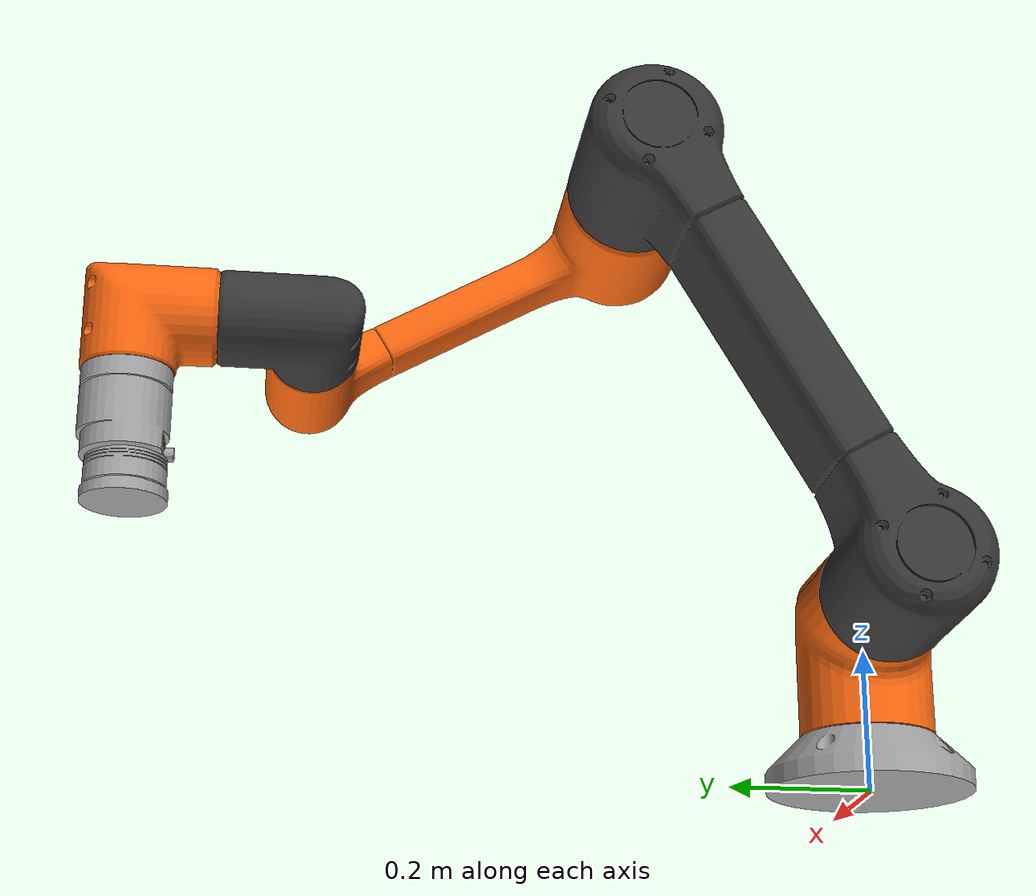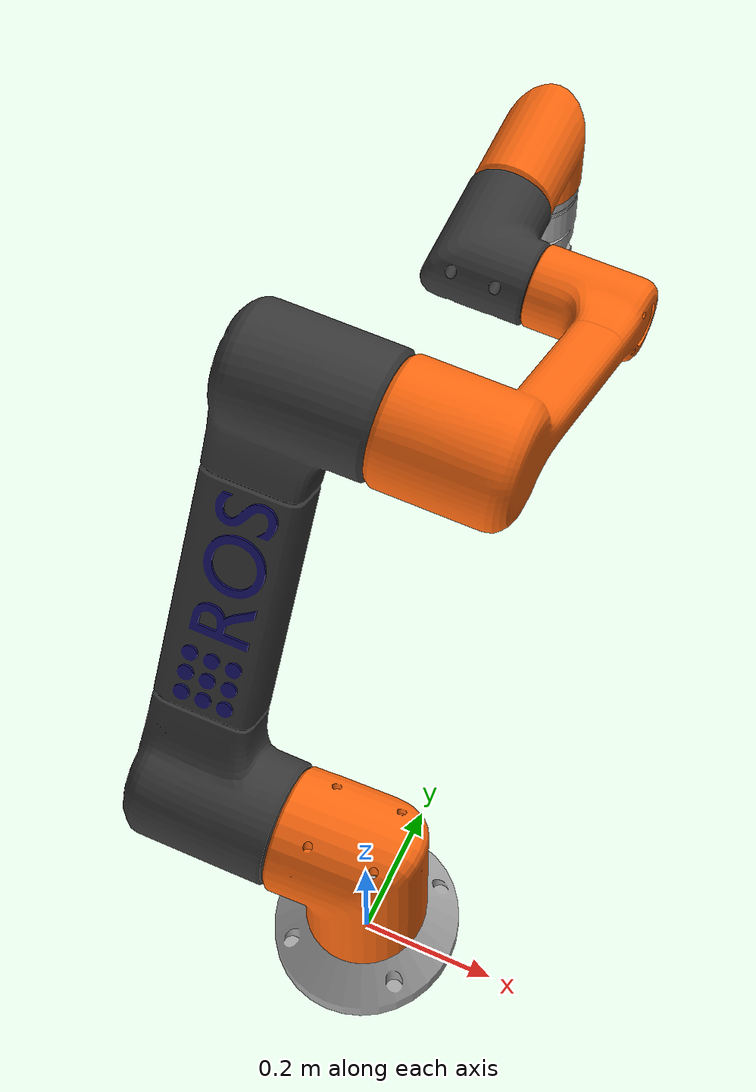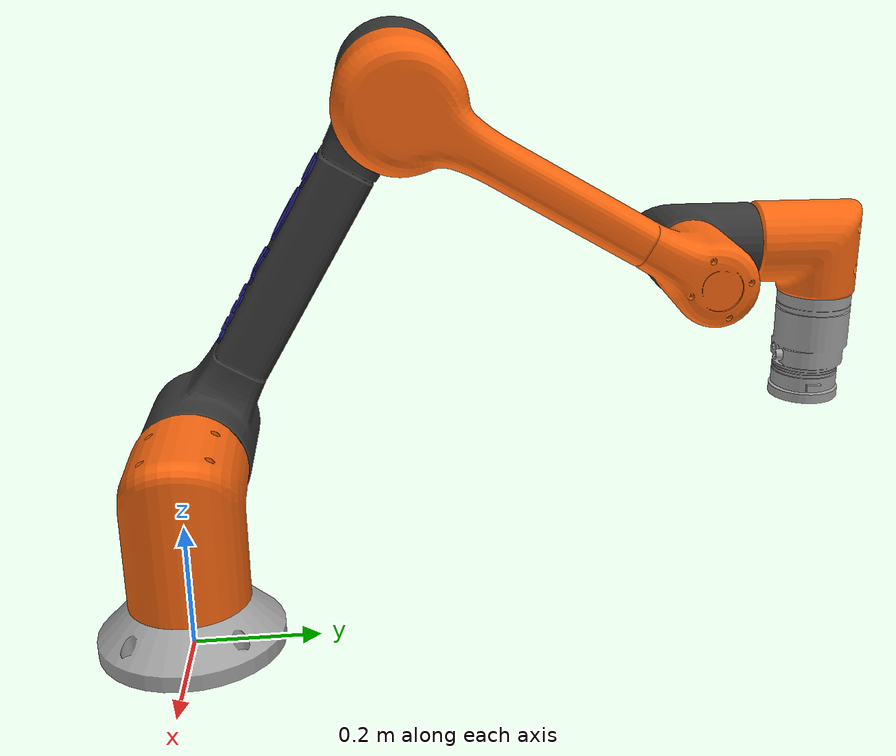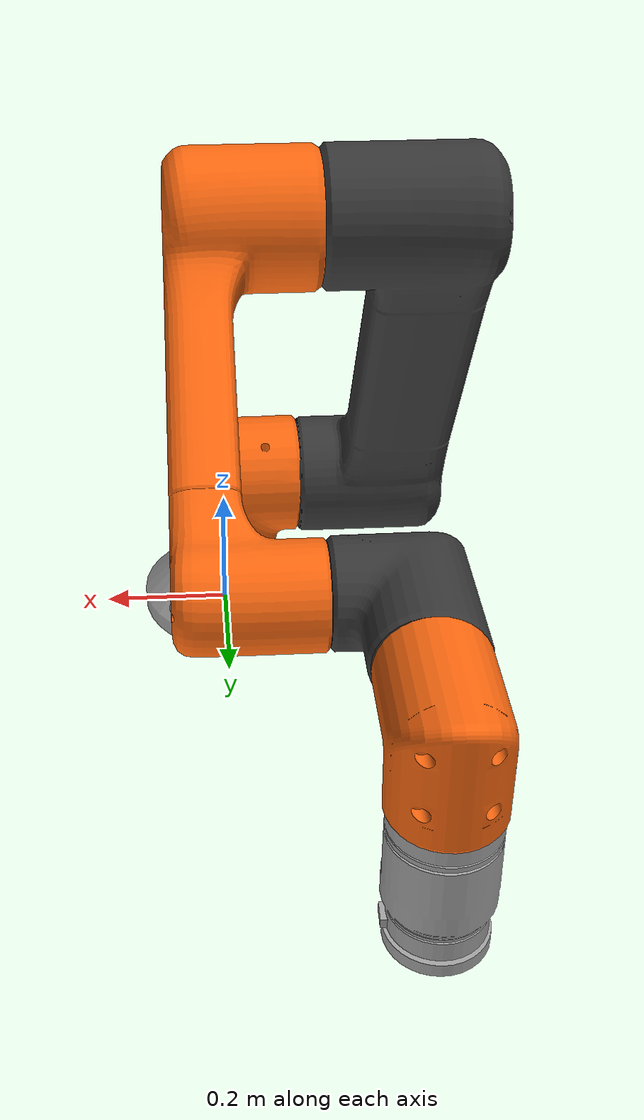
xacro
<?xml version="1.0"?>
<robot xmlns:xacro="http://wiki.ros.org/xacro" name="robot_6_dof">
  <!-- helper macro -->
  <xacro:include filename="$(find robot_6_dof)/urdf/inc/create_link.xacro"/>

  <!-- create link fixed to the "world" -->
  <link name="world"/>

  <xacro:create_link
      link_name="base_link"
      xyz_offset="0 0 0"
      rpy_offset="0 0 0"
      mesh_package="robot_6_dof"
      mesh_name="link_0"
  />

  <xacro:create_link
      link_name="link_1"
      xyz_offset="0 0 0"
      rpy_offset="0 0 0"
      mesh_package="robot_6_dof"
      mesh_name="link_1"
  />

  <xacro:create_link
      link_name="link_2"
      xyz_offset="0 0 0"
      rpy_offset="0 0 0"
      mesh_package="robot_6_dof"
      mesh_name="link_2"
  />

  <xacro:create_link
      link_name="link_3"
      xyz_offset="0 0 0"
      rpy_offset="0 0 0"
      mesh_package="robot_6_dof"
      mesh_name="link_3"
  />

  <xacro:create_link
      link_name="link_4"
      xyz_offset="0 0 0"
      rpy_offset="0 0 0"
      mesh_package="robot_6_dof"
      mesh_name="link_4"
  />

  <xacro:create_link
      link_name="link_5"
      xyz_offset="0 0 0"
      rpy_offset="0 0 0"
      mesh_package="robot_6_dof"
      mesh_name="link_5"
  />

  <xacro:create_link
      link_name="link_6"
      xyz_offset="0 0 0"
      rpy_offset="0 0 0"
      mesh_package="robot_6_dof"
      mesh_name="link_6"
  />

  <link name="ft_frame"/>
  <link name="tool0"/>

  <!-- base_joint fixes base_link to the environment -->
  <joint name="base_joint" type="fixed">
    <parent link="world"/>
    <child link="base_link"/>
    <origin xyz="0 0 0" rpy="0 0 0"/>
    <axis xyz="0 0 1"/>
  </joint>

  <!-- joints - main serial chain -->
  <joint name="joint_1" type="revolute">
    <parent link="base_link"/>
    <child link="link_1"/>
    <origin xyz="0 0 0.061584" rpy="0 0 0"/>
    <axis xyz="0 0 1"/>
    <limit effort="1000.0" lower="${-pi}" upper="${pi}" velocity="2.5" />
  </joint>

  <joint name="joint_2" type="revolute">
    <parent link="link_1"/>
    <child link="link_2"/>
    <origin xyz="-0.101717 0 0.182284" rpy="${-pi/2} -${pi/3} ${pi/2}"/>
    <axis xyz="0 0 1"/>
    <limit effort="1000.0" lower="${-pi}" upper="${pi}" velocity="2.5" />
  </joint>

  <joint name="joint_3" type="revolute">
    <parent link="link_2"/>
    <child link="link_3"/>
    <origin xyz="0.685682 0 0.041861" rpy="0 ${pi} ${pi+pi/2}"/>
    <axis xyz="0 0 1"/>
    <limit effort="1000.0" lower="${-pi}" upper="${pi}" velocity="2.5" />
  </joint>

  <joint name="joint_4" type="revolute">
    <parent link="link_3"/>
    <child link="link_4"/>
    <origin xyz="0.518777 0 0.067458" rpy="0 ${pi} ${pi+pi/6}"/>
    <axis xyz="0 0 1"/>
    <limit effort="1000.0" lower="${-pi}" upper="${pi}" velocity="2.5" />
  </joint>

  <joint name="joint_5" type="revolute">
    <parent link="link_4"/>
    <child link="link_5"/>
    <origin xyz="0.112654 0 0.110903" rpy="${pi/2} ${pi} ${pi/2}"/>
    <axis xyz="0 0 1"/>
    <limit effort="1000.0" lower="${-pi}" upper="${pi}" velocity="2.5" />
  </joint>

  <joint name="joint_6" type="revolute">
    <parent link="link_5"/>
    <child link="link_6"/>
    <origin xyz="-0.085976 0 0.133436" rpy="0 ${-pi/2} 0"/>
    <axis xyz="0 0 1"/>
    <limit effort="1000.0" lower="${-pi}" upper="${pi}" velocity="2.5" />
  </joint>

  <joint name="joint-ft_frame" type="fixed">
    <parent link="link_6"/>
    <child link="ft_frame"/>
    <origin xyz="0 0 0" rpy="0 0 0"/>
  </joint>

  <joint name="joint-tool" type="fixed">
    <parent link="ft_frame"/>
    <child link="tool0"/>
    <origin xyz="0 0 .185" rpy="0 0 0"/>
  </joint>

  <!-- ros2 control tag -->
  <ros2_control name="robot_6_dof" type="system">

    <hardware>
      <plugin>fake_components/GenericSystem</plugin>
      <param name="fake_sensor_commands">true</param>
      <param name="state_following_offset">0.0</param>
    </hardware>

    <joint name="joint_1">
      <command_interface name="position">
        <param name="min">{-2*pi}</param>
        <param name="max">{2*pi}</param>
      </command_interface>
      <command_interface name="velocity">
        <param name="min">-3.15</param>
        <param name="max">3.15</param>
      </command_interface>
      <state_interface name="position">
        <param name="initial_value">0.0</param>
      </state_interface>
      <state_interface name="velocity"/>
      <state_interface name="effort"/>
    </joint>

    <joint name="joint_2">
      <command_interface name="position">
        <param name="min">{-2*pi}</param>
        <param name="max">{2*pi}</param>
      </command_interface>
      <command_interface name="velocity">
        <param name="min">-3.15</param>
        <param name="max">3.15</param>
      </command_interface>
      <state_interface name="position">
        <param name="initial_value">0.0</param>
      </state_interface>
      <state_interface name="velocity"/>
      <state_interface name="effort"/>
    </joint>

    <joint name="joint_3">
      <command_interface name="position">
        <param name="min">{-pi}</param>
        <param name="max">{pi}</param>
      </command_interface>
      <command_interface name="velocity">
        <param name="min">-3.15</param>
        <param name="max">3.15</param>
      </command_interface>
      <state_interface name="position">
        <param name="initial_value">0.0</param>
      </state_interface>
      <state_interface name="velocity"/>
      <state_interface name="effort"/>
    </joint>

    <joint name="joint_4">
      <command_interface name="position">
        <param name="min">{-2*pi}</param>
        <param name="max">{2*pi}</param>
      </command_interface>
      <command_interface name="velocity">
        <param name="min">-3.2</param>
        <param name="max">3.2</param>
      </command_interface>
      <state_interface name="position">
        <param name="initial_value">0.0</param>
      </state_interface>
      <state_interface name="velocity"/>
      <state_interface name="effort"/>
    </joint>

    <joint name="joint_5">
      <command_interface name="position">
        <param name="min">{-2*pi}</param>
        <param name="max">{2*pi}</param>
      </command_interface>
      <command_interface name="velocity">
        <param name="min">-3.2</param>
        <param name="max">3.2</param>
      </command_interface>
      <state_interface name="position">
        <param name="initial_value">0.0</param>
      </state_interface>
      <state_interface name="velocity"/>
      <state_interface name="effort"/>
    </joint>

    <joint name="joint_6">
      <command_interface name="position">
        <param name="min">{-2*pi}</param>
        <param name="max">{2*pi}</param>
      </command_interface>
      <command_interface name="velocity">
        <param name="min">-3.2</param>
        <param name="max">3.2</param>
      </command_interface>
      <state_interface name="position">
        <param name="initial_value">0.0</param>
      </state_interface>
      <state_interface name="velocity"/>
      <state_interface name="effort"/>
    </joint>

    <sensor name="tcp_fts_sensor">
      <state_interface name="force.x"/>
      <state_interface name="force.y"/>
      <state_interface name="force.z"/>
      <state_interface name="torque.x"/>
      <state_interface name="torque.y"/>
      <state_interface name="torque.z"/>
    </sensor>

  </ros2_control>

</robot>

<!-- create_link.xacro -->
<robot xmlns:xacro="http://wiki.ros.org/xacro">

    <xacro:macro name="create_link" params="
        link_name
        xyz_offset
        rpy_offset
        mesh_package
        mesh_name">
        <link name="${link_name}">
            <visual>
                <origin xyz="${xyz_offset}" rpy="${rpy_offset}"/>
                <geometry>
                    <mesh filename="package://${mesh_package}/meshes/visual/${mesh_name}.dae"/>
                </geometry>
            </visual>
            <collision>
                <origin xyz="${xyz_offset}" rpy="${rpy_offset}"/>
                <geometry>
                    <mesh filename="package://${mesh_package}/meshes/collision/${mesh_name}.stl"/>
                </geometry>
            </collision>
            <inertial>
                <mass value="1"/>
                <inertia ixx="1.0" ixy="0.0" ixz="0.0" iyy="1.0" iyz="0.0" izz="1.0"/>
            </inertial>
        </link>
    </xacro:macro>
</robot>
